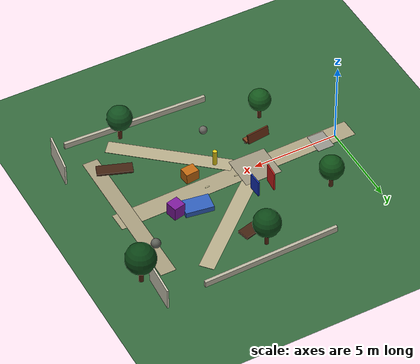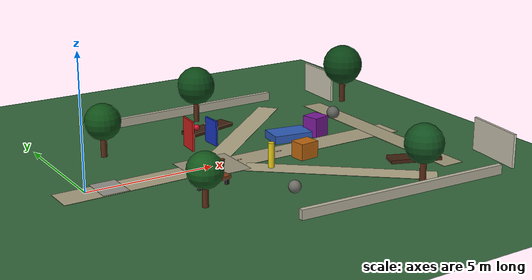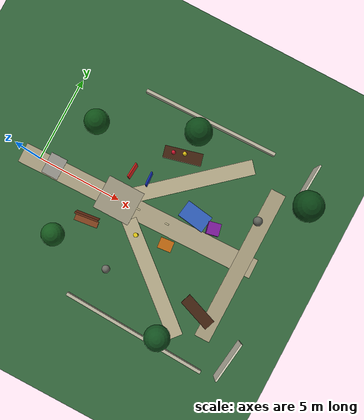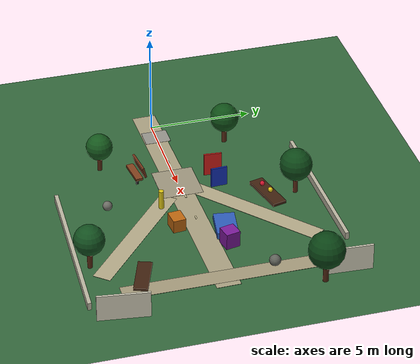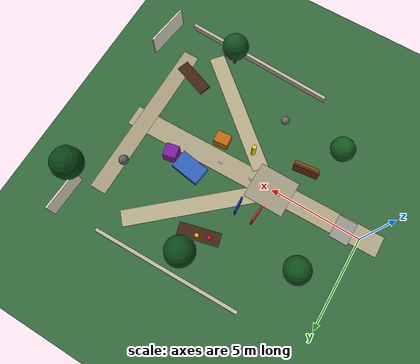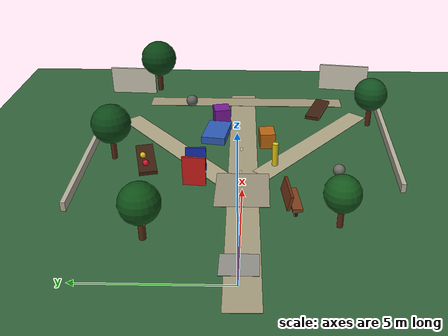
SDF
<?xml version="1.0"?>
<sdf version="1.6">
  <world name="mari_large_park_test">
    <gravity>0 0 -9.80665</gravity>

    <spherical_coordinates>
      <heading_deg>180</heading_deg>
    </spherical_coordinates>

    <physics name="default_physics" default="true" type="ode">
      <max_step_size>0.001</max_step_size>
      <real_time_factor>1.0</real_time_factor>
      <real_time_update_rate>1000</real_time_update_rate>
    </physics>

    <scene>
      <ambient>0.58 0.60 0.56 1</ambient>
      <background>0.67 0.79 0.98 1</background>
      <shadows>true</shadows>
    </scene>

    <light name="sun" type="directional">
      <cast_shadows>true</cast_shadows>
      <pose>0 0 14 0 0 0</pose>
      <diffuse>0.96 0.92 0.82 1</diffuse>
      <specular>0.22 0.22 0.18 1</specular>
      <attenuation>
        <range>1000</range>
        <constant>0.9</constant>
        <linear>0.01</linear>
        <quadratic>0.001</quadratic>
      </attenuation>
      <direction>-0.32 0.24 -0.92</direction>
    </light>

    <model name="large_park_ground">
      <static>true</static>
      <link name="link">
        <collision name="ground_collision">
          <geometry>
            <plane>
              <normal>0 0 1</normal>
              <size>34 26</size>
            </plane>
          </geometry>
        </collision>
        <visual name="grass_visual">
          <geometry>
            <plane>
              <normal>0 0 1</normal>
              <size>34 26</size>
            </plane>
          </geometry>
          <material>
            <ambient>0.20 0.40 0.23 1</ambient>
            <diffuse>0.20 0.40 0.23 1</diffuse>
          </material>
        </visual>
      </link>
    </model>

    <model name="park_paths">
      <static>true</static>
      <link name="link">
        <visual name="main_walkway">
          <pose>6.2 0.0 0.006 0 0 0.02</pose>
          <geometry>
            <box>
              <size>14.5 1.15 0.012</size>
            </box>
          </geometry>
          <material>
            <ambient>0.66 0.62 0.50 1</ambient>
            <diffuse>0.66 0.62 0.50 1</diffuse>
          </material>
        </visual>
        <visual name="left_curve_path">
          <pose>8.1 2.85 0.007 0 0 0.72</pose>
          <geometry>
            <box>
              <size>7.2 0.86 0.012</size>
            </box>
          </geometry>
          <material>
            <ambient>0.70 0.66 0.53 1</ambient>
            <diffuse>0.70 0.66 0.53 1</diffuse>
          </material>
        </visual>
        <visual name="right_curve_path">
          <pose>8.7 -2.95 0.007 0 0 -0.70</pose>
          <geometry>
            <box>
              <size>7.0 0.86 0.012</size>
            </box>
          </geometry>
          <material>
            <ambient>0.70 0.66 0.53 1</ambient>
            <diffuse>0.70 0.66 0.53 1</diffuse>
          </material>
        </visual>
        <visual name="far_cross_path">
          <pose>12.7 0.0 0.008 0 0 1.57</pose>
          <geometry>
            <box>
              <size>9.2 0.90 0.012</size>
            </box>
          </geometry>
          <material>
            <ambient>0.64 0.60 0.48 1</ambient>
            <diffuse>0.64 0.60 0.48 1</diffuse>
          </material>
        </visual>
        <visual name="small_plaza">
          <pose>5.0 0.0 0.009 0 0 0</pose>
          <geometry>
            <box>
              <size>2.2 2.0 0.014</size>
            </box>
          </geometry>
          <material>
            <ambient>0.61 0.58 0.49 1</ambient>
            <diffuse>0.61 0.58 0.49 1</diffuse>
          </material>
        </visual>
        <visual name="start_paving">
          <pose>0.9 0.0 0.010 0 0 0</pose>
          <geometry>
            <box>
              <size>1.0 1.25 0.014</size>
            </box>
          </geometry>
          <material>
            <ambient>0.58 0.57 0.54 1</ambient>
            <diffuse>0.58 0.57 0.54 1</diffuse>
          </material>
        </visual>
      </link>
    </model>

    <model name="path_center_markers">
      <static>true</static>
      <link name="link">
        <visual name="marker_1">
          <pose>1.8 0.0 0.018 0 0 0.02</pose>
          <geometry><box><size>0.24 0.07 0.014</size></box></geometry>
          <material><ambient>0.86 0.82 0.64 1</ambient><diffuse>0.86 0.82 0.64 1</diffuse></material>
        </visual>
        <visual name="marker_2">
          <pose>3.2 0.03 0.018 0 0 0.02</pose>
          <geometry><box><size>0.24 0.07 0.014</size></box></geometry>
          <material><ambient>0.86 0.82 0.64 1</ambient><diffuse>0.86 0.82 0.64 1</diffuse></material>
        </visual>
        <visual name="marker_3">
          <pose>4.6 0.05 0.018 0 0 0.02</pose>
          <geometry><box><size>0.24 0.07 0.014</size></box></geometry>
          <material><ambient>0.86 0.82 0.64 1</ambient><diffuse>0.86 0.82 0.64 1</diffuse></material>
        </visual>
        <visual name="marker_4">
          <pose>6.2 0.08 0.018 0 0 0.02</pose>
          <geometry><box><size>0.24 0.07 0.014</size></box></geometry>
          <material><ambient>0.86 0.82 0.64 1</ambient><diffuse>0.86 0.82 0.64 1</diffuse></material>
        </visual>
        <visual name="marker_5">
          <pose>8.0 0.10 0.018 0 0 0.02</pose>
          <geometry><box><size>0.24 0.07 0.014</size></box></geometry>
          <material><ambient>0.86 0.82 0.64 1</ambient><diffuse>0.86 0.82 0.64 1</diffuse></material>
        </visual>
      </link>
    </model>

    <model name="tree_cluster_near_left">
      <static>true</static>
      <pose>2.1 3.15 0 0 0 0</pose>
      <link name="link">
        <collision name="trunk_collision">
          <pose>0 0 0.58 0 0 0</pose>
          <geometry><cylinder><radius>0.12</radius><length>1.16</length></cylinder></geometry>
        </collision>
        <visual name="trunk_visual">
          <pose>0 0 0.58 0 0 0</pose>
          <geometry><cylinder><radius>0.12</radius><length>1.16</length></cylinder></geometry>
          <material><ambient>0.33 0.17 0.08 1</ambient><diffuse>0.33 0.17 0.08 1</diffuse></material>
        </visual>
        <collision name="crown_collision">
          <pose>0 0 1.38 0 0 0</pose>
          <geometry><sphere><radius>0.70</radius></sphere></geometry>
        </collision>
        <visual name="crown_visual">
          <pose>0 0 1.38 0 0 0</pose>
          <geometry><sphere><radius>0.70</radius></sphere></geometry>
          <material><ambient>0.06 0.31 0.09 1</ambient><diffuse>0.06 0.31 0.09 1</diffuse></material>
        </visual>
      </link>
    </model>

    <model name="tree_cluster_near_right">
      <static>true</static>
      <pose>2.9 -3.30 0 0 0 0</pose>
      <link name="link">
        <collision name="trunk_collision">
          <pose>0 0 0.55 0 0 0</pose>
          <geometry><cylinder><radius>0.11</radius><length>1.10</length></cylinder></geometry>
        </collision>
        <visual name="trunk_visual">
          <pose>0 0 0.55 0 0 0</pose>
          <geometry><cylinder><radius>0.11</radius><length>1.10</length></cylinder></geometry>
          <material><ambient>0.34 0.16 0.07 1</ambient><diffuse>0.34 0.16 0.07 1</diffuse></material>
        </visual>
        <collision name="crown_collision">
          <pose>0 0 1.30 0 0 0</pose>
          <geometry><sphere><radius>0.64</radius></sphere></geometry>
        </collision>
        <visual name="crown_visual">
          <pose>0 0 1.30 0 0 0</pose>
          <geometry><sphere><radius>0.64</radius></sphere></geometry>
          <material><ambient>0.08 0.34 0.11 1</ambient><diffuse>0.08 0.34 0.11 1</diffuse></material>
        </visual>
      </link>
    </model>

    <model name="tree_row_and_depth_cues">
      <static>true</static>
      <link name="link">
        <collision name="tree_a_trunk_collision">
          <pose>7.2 5.2 0.65 0 0 0</pose>
          <geometry><cylinder><radius>0.11</radius><length>1.30</length></cylinder></geometry>
        </collision>
        <visual name="tree_a_trunk_visual">
          <pose>7.2 5.2 0.65 0 0 0</pose>
          <geometry><cylinder><radius>0.11</radius><length>1.30</length></cylinder></geometry>
          <material><ambient>0.34 0.16 0.08 1</ambient><diffuse>0.34 0.16 0.08 1</diffuse></material>
        </visual>
        <visual name="tree_a_crown_visual">
          <pose>7.2 5.2 1.55 0 0 0</pose>
          <geometry><sphere><radius>0.78</radius></sphere></geometry>
          <material><ambient>0.05 0.28 0.09 1</ambient><diffuse>0.05 0.28 0.09 1</diffuse></material>
        </visual>

        <collision name="tree_b_trunk_collision">
          <pose>10.4 -5.5 0.64 0 0 0</pose>
          <geometry><cylinder><radius>0.12</radius><length>1.28</length></cylinder></geometry>
        </collision>
        <visual name="tree_b_trunk_visual">
          <pose>10.4 -5.5 0.64 0 0 0</pose>
          <geometry><cylinder><radius>0.12</radius><length>1.28</length></cylinder></geometry>
          <material><ambient>0.33 0.15 0.07 1</ambient><diffuse>0.33 0.15 0.07 1</diffuse></material>
        </visual>
        <visual name="tree_b_crown_visual">
          <pose>10.4 -5.5 1.50 0 0 0</pose>
          <geometry><sphere><radius>0.72</radius></sphere></geometry>
          <material><ambient>0.07 0.31 0.12 1</ambient><diffuse>0.07 0.31 0.12 1</diffuse></material>
        </visual>

        <collision name="tree_c_trunk_collision">
          <pose>14.2 4.4 0.70 0 0 0</pose>
          <geometry><cylinder><radius>0.13</radius><length>1.40</length></cylinder></geometry>
        </collision>
        <visual name="tree_c_trunk_visual">
          <pose>14.2 4.4 0.70 0 0 0</pose>
          <geometry><cylinder><radius>0.13</radius><length>1.40</length></cylinder></geometry>
          <material><ambient>0.30 0.15 0.07 1</ambient><diffuse>0.30 0.15 0.07 1</diffuse></material>
        </visual>
        <visual name="tree_c_crown_visual">
          <pose>14.2 4.4 1.68 0 0 0</pose>
          <geometry><sphere><radius>0.86</radius></sphere></geometry>
          <material><ambient>0.04 0.26 0.08 1</ambient><diffuse>0.04 0.26 0.08 1</diffuse></material>
        </visual>
      </link>
    </model>

    <model name="park_furniture_and_landmarks">
      <static>true</static>
      <link name="link">
        <collision name="bench_1_seat_collision">
          <pose>4.0 -1.85 0.28 0 0 0.12</pose>
          <geometry><box><size>1.35 0.36 0.12</size></box></geometry>
        </collision>
        <visual name="bench_1_seat_visual">
          <pose>4.0 -1.85 0.28 0 0 0.12</pose>
          <geometry><box><size>1.35 0.36 0.12</size></box></geometry>
          <material><ambient>0.50 0.25 0.11 1</ambient><diffuse>0.50 0.25 0.11 1</diffuse></material>
        </visual>
        <visual name="bench_1_back_visual">
          <pose>3.95 -1.58 0.58 0.24 0 0.12</pose>
          <geometry><box><size>1.35 0.10 0.55</size></box></geometry>
          <material><ambient>0.45 0.20 0.09 1</ambient><diffuse>0.45 0.20 0.09 1</diffuse></material>
        </visual>
        <visual name="bench_1_leg_a_visual">
          <pose>3.45 -1.86 0.13 0 0 0.12</pose>
          <geometry><box><size>0.12 0.12 0.26</size></box></geometry>
          <material><ambient>0.08 0.08 0.08 1</ambient><diffuse>0.08 0.08 0.08 1</diffuse></material>
        </visual>
        <visual name="bench_1_leg_b_visual">
          <pose>4.55 -1.86 0.13 0 0 0.12</pose>
          <geometry><box><size>0.12 0.12 0.26</size></box></geometry>
          <material><ambient>0.08 0.08 0.08 1</ambient><diffuse>0.08 0.08 0.08 1</diffuse></material>
        </visual>

        <collision name="sign_red_collision">
          <pose>5.0 1.75 0.78 0 0 -0.08</pose>
          <geometry><box><size>0.08 0.86 1.16</size></box></geometry>
        </collision>
        <visual name="sign_red_visual">
          <pose>5.0 1.75 0.78 0 0 -0.08</pose>
          <geometry><box><size>0.08 0.86 1.16</size></box></geometry>
          <material><ambient>0.80 0.12 0.10 1</ambient><diffuse>0.80 0.12 0.10 1</diffuse></material>
        </visual>
        <collision name="sign_blue_collision">
          <pose>6.0 1.78 0.70 0 0 0.05</pose>
          <geometry><box><size>0.08 0.78 1.00</size></box></geometry>
        </collision>
        <visual name="sign_blue_visual">
          <pose>6.0 1.78 0.70 0 0 0.05</pose>
          <geometry><box><size>0.08 0.78 1.00</size></box></geometry>
          <material><ambient>0.08 0.19 0.72 1</ambient><diffuse>0.08 0.19 0.72 1</diffuse></material>
        </visual>
        <collision name="yellow_bollard_collision">
          <pose>6.8 -1.25 0.48 0 0 0</pose>
          <geometry><cylinder><radius>0.12</radius><length>0.96</length></cylinder></geometry>
        </collision>
        <visual name="yellow_bollard_visual">
          <pose>6.8 -1.25 0.48 0 0 0</pose>
          <geometry><cylinder><radius>0.12</radius><length>0.96</length></cylinder></geometry>
          <material><ambient>0.88 0.78 0.08 1</ambient><diffuse>0.88 0.78 0.08 1</diffuse></material>
        </visual>
      </link>
    </model>

    <model name="playground_corner">
      <static>true</static>
      <link name="link">
        <collision name="low_platform_collision">
          <pose>9.2 1.2 0.16 0 0 -0.15</pose>
          <geometry><box><size>1.60 1.00 0.32</size></box></geometry>
        </collision>
        <visual name="low_platform_visual">
          <pose>9.2 1.2 0.16 0 0 -0.15</pose>
          <geometry><box><size>1.60 1.00 0.32</size></box></geometry>
          <material><ambient>0.18 0.36 0.72 1</ambient><diffuse>0.18 0.36 0.72 1</diffuse></material>
        </visual>
        <collision name="purple_cube_collision">
          <pose>10.4 1.05 0.40 0 0 0.22</pose>
          <geometry><box><size>0.70 0.70 0.80</size></box></geometry>
        </collision>
        <visual name="purple_cube_visual">
          <pose>10.4 1.05 0.40 0 0 0.22</pose>
          <geometry><box><size>0.70 0.70 0.80</size></box></geometry>
          <material><ambient>0.48 0.10 0.60 1</ambient><diffuse>0.48 0.10 0.60 1</diffuse></material>
        </visual>
        <collision name="orange_block_collision">
          <pose>8.5 -0.95 0.32 0 0 0.10</pose>
          <geometry><box><size>0.78 0.62 0.64</size></box></geometry>
        </collision>
        <visual name="orange_block_visual">
          <pose>8.5 -0.95 0.32 0 0 0.10</pose>
          <geometry><box><size>0.78 0.62 0.64</size></box></geometry>
          <material><ambient>0.74 0.40 0.06 1</ambient><diffuse>0.74 0.40 0.06 1</diffuse></material>
        </visual>
      </link>
    </model>

    <model name="garden_beds_and_rocks">
      <static>true</static>
      <link name="link">
        <visual name="flower_bed_left">
          <pose>7.0 3.9 0.07 0 0 0.25</pose>
          <geometry><box><size>2.2 0.70 0.14</size></box></geometry>
          <material><ambient>0.25 0.13 0.06 1</ambient><diffuse>0.25 0.13 0.06 1</diffuse></material>
        </visual>
        <visual name="flower_bed_left_flower_1">
          <pose>6.45 3.80 0.23 0 0 0</pose>
          <geometry><sphere><radius>0.12</radius></sphere></geometry>
          <material><ambient>0.82 0.08 0.18 1</ambient><diffuse>0.82 0.08 0.18 1</diffuse></material>
        </visual>
        <visual name="flower_bed_left_flower_2">
          <pose>7.05 4.02 0.23 0 0 0</pose>
          <geometry><sphere><radius>0.12</radius></sphere></geometry>
          <material><ambient>0.86 0.74 0.06 1</ambient><diffuse>0.86 0.74 0.06 1</diffuse></material>
        </visual>
        <visual name="flower_bed_right">
          <pose>11.8 -3.4 0.07 0 0 -0.35</pose>
          <geometry><box><size>2.0 0.66 0.14</size></box></geometry>
          <material><ambient>0.25 0.13 0.06 1</ambient><diffuse>0.25 0.13 0.06 1</diffuse></material>
        </visual>
        <collision name="rock_1_collision">
          <pose>6.2 -3.7 0.17 0 0 0</pose>
          <geometry><sphere><radius>0.23</radius></sphere></geometry>
        </collision>
        <visual name="rock_1_visual">
          <pose>6.2 -3.7 0.17 0 0 0</pose>
          <geometry><sphere><radius>0.23</radius></sphere></geometry>
          <material><ambient>0.42 0.42 0.39 1</ambient><diffuse>0.42 0.42 0.39 1</diffuse></material>
        </visual>
        <collision name="rock_2_collision">
          <pose>12.4 2.6 0.20 0 0 0</pose>
          <geometry><sphere><radius>0.27</radius></sphere></geometry>
        </collision>
        <visual name="rock_2_visual">
          <pose>12.4 2.6 0.20 0 0 0</pose>
          <geometry><sphere><radius>0.27</radius></sphere></geometry>
          <material><ambient>0.37 0.38 0.35 1</ambient><diffuse>0.37 0.38 0.35 1</diffuse></material>
        </visual>
      </link>
    </model>

    <model name="park_edges_and_fences">
      <static>true</static>
      <link name="link">
        <collision name="left_low_wall_collision">
          <pose>7.5 6.25 0.18 0 0 0.02</pose>
          <geometry><box><size>8.0 0.18 0.36</size></box></geometry>
        </collision>
        <visual name="left_low_wall_visual">
          <pose>7.5 6.25 0.18 0 0 0.02</pose>
          <geometry><box><size>8.0 0.18 0.36</size></box></geometry>
          <material><ambient>0.72 0.70 0.62 1</ambient><diffuse>0.72 0.70 0.62 1</diffuse></material>
        </visual>
        <collision name="right_low_wall_collision">
          <pose>9.2 -6.05 0.18 0 0 -0.04</pose>
          <geometry><box><size>8.5 0.18 0.36</size></box></geometry>
        </collision>
        <visual name="right_low_wall_visual">
          <pose>9.2 -6.05 0.18 0 0 -0.04</pose>
          <geometry><box><size>8.5 0.18 0.36</size></box></geometry>
          <material><ambient>0.72 0.70 0.62 1</ambient><diffuse>0.72 0.70 0.62 1</diffuse></material>
        </visual>
        <visual name="white_fence_left">
          <pose>13.8 5.65 0.65 0 0 1.52</pose>
          <geometry><box><size>2.2 0.10 1.30</size></box></geometry>
          <material><ambient>0.82 0.80 0.72 1</ambient><diffuse>0.82 0.80 0.72 1</diffuse></material>
        </visual>
        <visual name="white_fence_right">
          <pose>14.4 -4.9 0.65 0 0 1.44</pose>
          <geometry><box><size>2.4 0.10 1.30</size></box></geometry>
          <material><ambient>0.82 0.80 0.72 1</ambient><diffuse>0.82 0.80 0.72 1</diffuse></material>
        </visual>
      </link>
    </model>
  </world>
</sdf>
